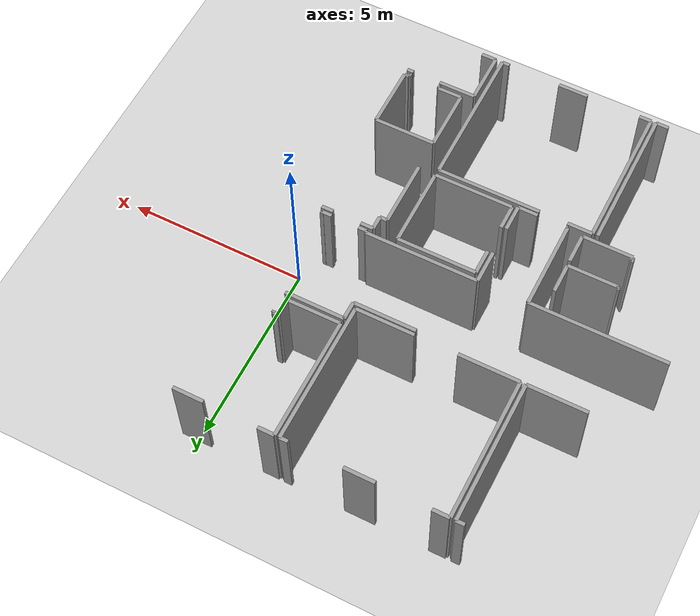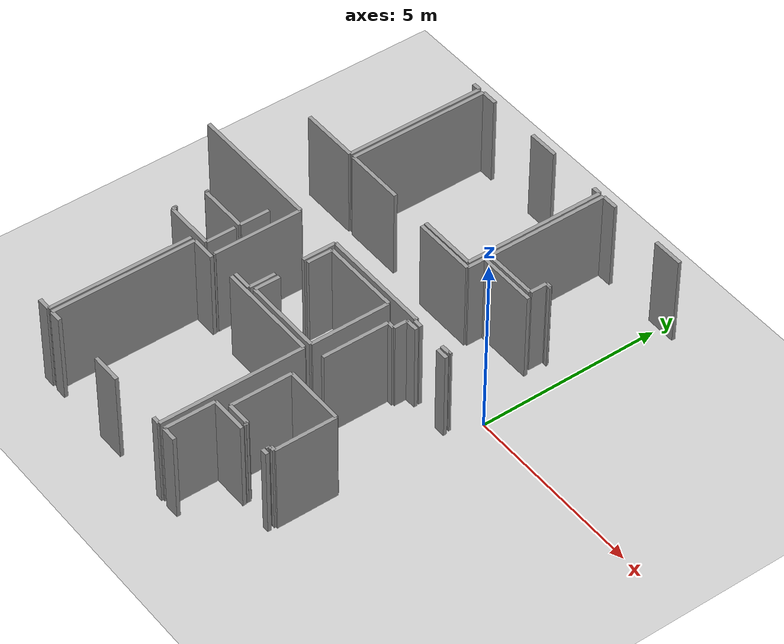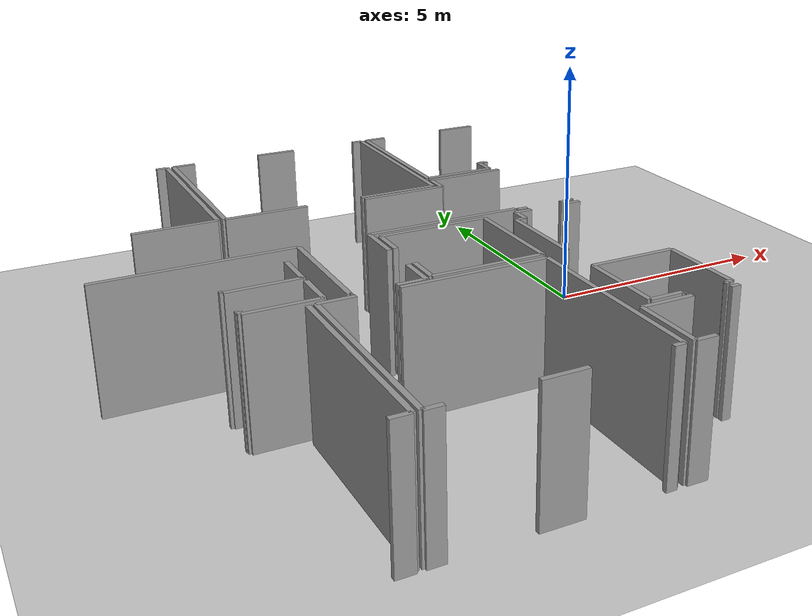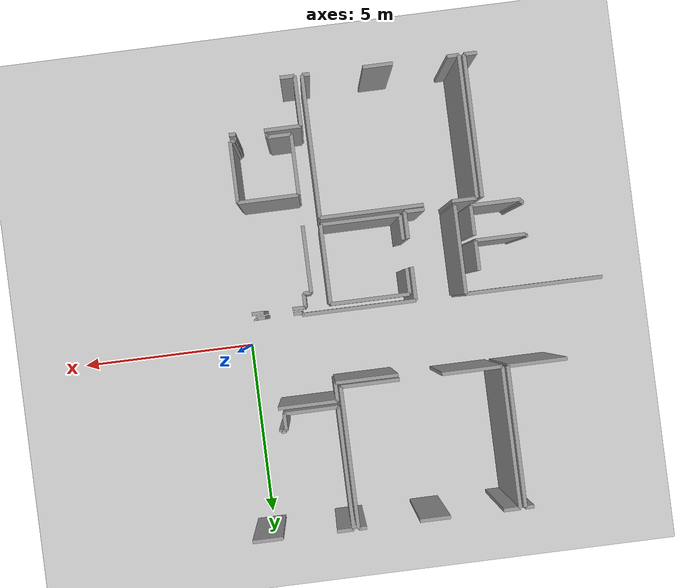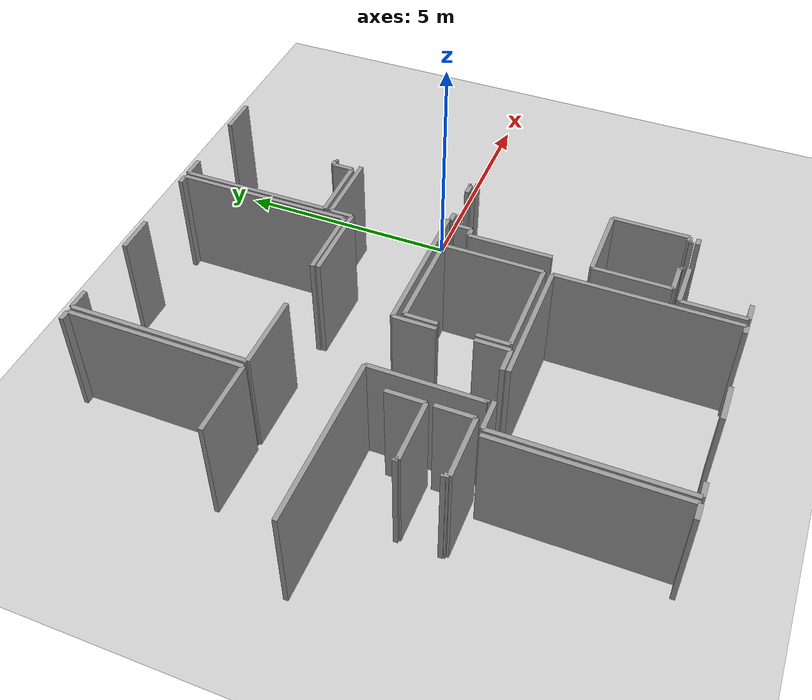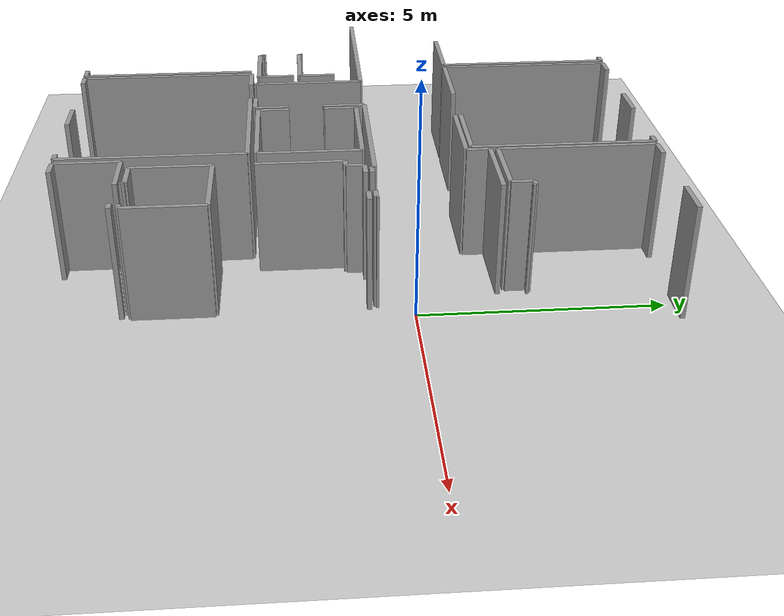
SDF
<sdf version="1.6">
 <world name="default">
  <model name="ground_plane">
   <static>1</static>
   <link name="link">
    <collision name="collision">
     <geometry><plane><normal>0 0 1</normal><size>100 100</size></plane></geometry>
     <surface><friction><ode><mu>100</mu><mu2>50</mu2></ode></friction></surface>
    </collision>
    <visual name="visual">
     <cast_shadows>0</cast_shadows>
     <geometry><plane><normal>0 0 1</normal><size>100 100</size></plane></geometry>
     <material>
      <script><uri>file://media/materials/scripts/gazebo.material</uri><name>Gazebo/Grey</name></script>
     </material>
    </visual>
   </link>
  </model>
  <model name="0510025537_Layout1_PLAN2">
   <static>1</static>
   <link name="Wall_35">
    <collision name="Wall_35_Collision">
     <geometry><box><size>3.89750270064 0.1 2.5</size></box></geometry>
     <pose>1.94875135032 0 1.25 0 0 0</pose>
    </collision>
    <visual name="Wall_35_Visual">
     <pose>1.94875135032 0 1.25 0 0 0</pose>
     <geometry><box><size>3.89750270064 0.1 2.5</size></box></geometry>
     <material>
      <script><uri>file://media/materials/scripts/gazebo.material</uri><name>Gazebo/Grey</name></script>
      <ambient>1 1 1 1</ambient>
     </material>
    </visual>
    <pose>13.3397725106 -8.47578954057 0 0 0 -1.57079632679</pose>
   </link>
   <link name="Wall_36">
    <collision name="Wall_36_Collision">
     <geometry><box><size>0.350702166868 0.1 2.5</size></box></geometry>
     <pose>0.175351083434 0 1.25 0 0 0</pose>
    </collision>
    <visual name="Wall_36_Visual">
     <pose>0.175351083434 0 1.25 0 0 0</pose>
     <geometry><box><size>0.350702166868 0.1 2.5</size></box></geometry>
     <material>
      <script><uri>file://media/materials/scripts/gazebo.material</uri><name>Gazebo/Grey</name></script>
      <ambient>1 1 1 1</ambient>
     </material>
    </visual>
    <pose>13.3397725106 -12.3732922412 0 0 0 3.14159265359</pose>
   </link>
   <link name="Wall_48">
    <collision name="Wall_48_Collision">
     <geometry><box><size>0.816483446654 0.1 2.5</size></box></geometry>
     <pose>0.408241723327 0 1.25 0 0 0</pose>
    </collision>
    <visual name="Wall_48_Visual">
     <pose>0.408241723327 0 1.25 0 0 0</pose>
     <geometry><box><size>0.816483446654 0.1 2.5</size></box></geometry>
     <material>
      <script><uri>file://media/materials/scripts/gazebo.material</uri><name>Gazebo/Grey</name></script>
      <ambient>1 1 1 1</ambient>
     </material>
    </visual>
    <pose>13.6641037046 -6.52281248014 0 0 0 -1.57079632679</pose>
   </link>
   <link name="Wall_49">
    <collision name="Wall_49_Collision">
     <geometry><box><size>1.35934422063 0.1 2.5</size></box></geometry>
     <pose>0.679672110313 0 1.25 0 0 0</pose>
    </collision>
    <visual name="Wall_49_Visual">
     <pose>0.679672110313 0 1.25 0 0 0</pose>
     <geometry><box><size>1.35934422063 0.1 2.5</size></box></geometry>
     <material>
      <script><uri>file://media/materials/scripts/gazebo.material</uri><name>Gazebo/Grey</name></script>
      <ambient>1 1 1 1</ambient>
     </material>
    </visual>
    <pose>13.6641037046 -7.3392959268 0 0 0 3.14159265359</pose>
   </link>
   <link name="Wall_50">
    <collision name="Wall_50_Collision">
     <geometry><box><size>0.0365380949355 0.1 2.5</size></box></geometry>
     <pose>0.0182690474678 0 1.25 0 0 0</pose>
    </collision>
    <visual name="Wall_50_Visual">
     <pose>0.0182690474678 0 1.25 0 0 0</pose>
     <geometry><box><size>0.0365380949355 0.1 2.5</size></box></geometry>
     <material>
      <script><uri>file://media/materials/scripts/gazebo.material</uri><name>Gazebo/Grey</name></script>
      <ambient>1 1 1 1</ambient>
     </material>
    </visual>
    <pose>12.304759484 -7.3392959268 0 0 0 1.57079632679</pose>
   </link>
   <link name="Wall_51">
    <collision name="Wall_51_Collision">
     <geometry><box><size>0.0599860202072 0.1 2.5</size></box></geometry>
     <pose>0.0299930101036 0 1.25 0 0 0</pose>
    </collision>
    <visual name="Wall_51_Visual">
     <pose>0.0299930101036 0 1.25 0 0 0</pose>
     <geometry><box><size>0.0599860202072 0.1 2.5</size></box></geometry>
     <material>
      <script><uri>file://media/materials/scripts/gazebo.material</uri><name>Gazebo/Grey</name></script>
      <ambient>1 1 1 1</ambient>
     </material>
    </visual>
    <pose>12.304759484 -7.30275783186 0 0 0 3.14159265359</pose>
   </link>
   <link name="Wall_57">
    <collision name="Wall_57_Collision">
     <geometry><box><size>0.8103196289 0.1 2.5</size></box></geometry>
     <pose>0.40515981445 0 1.25 0 0 0</pose>
    </collision>
    <visual name="Wall_57_Visual">
     <pose>0.40515981445 0 1.25 0 0 0</pose>
     <geometry><box><size>0.8103196289 0.1 2.5</size></box></geometry>
     <material>
      <script><uri>file://media/materials/scripts/gazebo.material</uri><name>Gazebo/Grey</name></script>
      <ambient>1 1 1 1</ambient>
     </material>
    </visual>
    <pose>13.6721103133 -7.48246171443 0 0 0 -1.57079632679</pose>
   </link>
   <link name="Wall_58">
    <collision name="Wall_58_Collision">
     <geometry><box><size>1.36538094936 0.1 2.5</size></box></geometry>
     <pose>0.682690474678 0 1.25 0 0 0</pose>
    </collision>
    <visual name="Wall_58_Visual">
     <pose>0.682690474678 0 1.25 0 0 0</pose>
     <geometry><box><size>1.36538094936 0.1 2.5</size></box></geometry>
     <material>
      <script><uri>file://media/materials/scripts/gazebo.material</uri><name>Gazebo/Grey</name></script>
      <ambient>1 1 1 1</ambient>
     </material>
    </visual>
    <pose>13.6721103133 -8.29278134333 0 0 0 3.14159265359</pose>
   </link>
   <link name="Wall_59">
    <collision name="Wall_59_Collision">
     <geometry><box><size>0.0972231047849 0.1 2.5</size></box></geometry>
     <pose>0.0486115523925 0 1.25 0 0 0</pose>
    </collision>
    <visual name="Wall_59_Visual">
     <pose>0.0486115523925 0 1.25 0 0 0</pose>
     <geometry><box><size>0.0972231047849 0.1 2.5</size></box></geometry>
     <material>
      <script><uri>file://media/materials/scripts/gazebo.material</uri><name>Gazebo/Grey</name></script>
      <ambient>1 1 1 1</ambient>
     </material>
    </visual>
    <pose>12.3067293639 -8.29278134333 0 0 0 1.57079632679</pose>
   </link>
   <link name="Wall_60">
    <collision name="Wall_60_Collision">
     <geometry><box><size>0.0660227489356 0.1 2.5</size></box></geometry>
     <pose>0.0330113744678 0 1.25 0 0 0</pose>
    </collision>
    <visual name="Wall_60_Visual">
     <pose>0.0330113744678 0 1.25 0 0 0</pose>
     <geometry><box><size>0.0660227489356 0.1 2.5</size></box></geometry>
     <material>
      <script><uri>file://media/materials/scripts/gazebo.material</uri><name>Gazebo/Grey</name></script>
      <ambient>1 1 1 1</ambient>
     </material>
    </visual>
    <pose>12.3067293639 -8.19555823855 0 0 0 3.14159265359</pose>
   </link>
   <link name="Wall_75">
    <collision name="Wall_75_Collision">
     <geometry><box><size>0.229395691682 0.1 2.5</size></box></geometry>
     <pose>0.114697845841 0 1.25 0 0 0</pose>
    </collision>
    <visual name="Wall_75_Visual">
     <pose>0.114697845841 0 1.25 0 0 0</pose>
     <geometry><box><size>0.229395691682 0.1 2.5</size></box></geometry>
     <material>
      <script><uri>file://media/materials/scripts/gazebo.material</uri><name>Gazebo/Grey</name></script>
      <ambient>1 1 1 1</ambient>
     </material>
    </visual>
    <pose>12.9947893499 -0.00805744423969 0 0 0 0.0</pose>
   </link>
   <link name="Wall_76">
    <collision name="Wall_76_Collision">
     <geometry><box><size>3.85548071424 0.1 2.5</size></box></geometry>
     <pose>1.92774035712 0 1.25 0 0 0</pose>
    </collision>
    <visual name="Wall_76_Visual">
     <pose>1.92774035712 0 1.25 0 0 0</pose>
     <geometry><box><size>3.85548071424 0.1 2.5</size></box></geometry>
     <material>
      <script><uri>file://media/materials/scripts/gazebo.material</uri><name>Gazebo/Grey</name></script>
      <ambient>1 1 1 1</ambient>
     </material>
    </visual>
    <pose>13.2241850416 -0.00805744423969 0 0 0 -1.57079632679</pose>
   </link>
   <link name="Wall_77">
    <collision name="Wall_77_Collision">
     <geometry><box><size>1.6211476139 0.1 2.5</size></box></geometry>
     <pose>0.810573806952 0 1.25 0 0 0</pose>
    </collision>
    <visual name="Wall_77_Visual">
     <pose>0.810573806952 0 1.25 0 0 0</pose>
     <geometry><box><size>1.6211476139 0.1 2.5</size></box></geometry>
     <material>
      <script><uri>file://media/materials/scripts/gazebo.material</uri><name>Gazebo/Grey</name></script>
      <ambient>1 1 1 1</ambient>
     </material>
    </visual>
    <pose>13.2241850416 -3.86353815848 0 0 0 3.14159265359</pose>
   </link>
   <link name="Wall_78">
    <collision name="Wall_78_Collision">
     <geometry><box><size>3.86142848065 0.1 2.5</size></box></geometry>
     <pose>1.93071424033 0 1.25 0 0 0</pose>
    </collision>
    <visual name="Wall_78_Visual">
     <pose>1.93071424033 0 1.25 0 0 0</pose>
     <geometry><box><size>3.86142848065 0.1 2.5</size></box></geometry>
     <material>
      <script><uri>file://media/materials/scripts/gazebo.material</uri><name>Gazebo/Grey</name></script>
      <ambient>1 1 1 1</ambient>
     </material>
    </visual>
    <pose>13.3675414628 -3.86760500731 0 0 0 1.57079632679</pose>
   </link>
   <link name="Wall_79">
    <collision name="Wall_79_Collision">
     <geometry><box><size>0.457711126644 0.1 2.5</size></box></geometry>
     <pose>0.228855563322 0 1.25 0 0 0</pose>
    </collision>
    <visual name="Wall_79_Visual">
     <pose>0.228855563322 0 1.25 0 0 0</pose>
     <geometry><box><size>0.457711126644 0.1 2.5</size></box></geometry>
     <material>
      <script><uri>file://media/materials/scripts/gazebo.material</uri><name>Gazebo/Grey</name></script>
      <ambient>1 1 1 1</ambient>
     </material>
    </visual>
    <pose>13.3675414628 -0.00617652665692 0 0 0 0.0</pose>
   </link>
   <link name="Wall_80">
    <collision name="Wall_80_Collision">
     <geometry><box><size>0.838596937154 0.1 2.5</size></box></geometry>
     <pose>0.419298468577 0 1.25 0 0 0</pose>
    </collision>
    <visual name="Wall_80_Visual">
     <pose>0.419298468577 0 1.25 0 0 0</pose>
     <geometry><box><size>0.838596937154 0.1 2.5</size></box></geometry>
     <material>
      <script><uri>file://media/materials/scripts/gazebo.material</uri><name>Gazebo/Grey</name></script>
      <ambient>1 1 1 1</ambient>
     </material>
    </visual>
    <pose>15.2684755671 -0.00617652665692 0 0 0 0.0</pose>
   </link>
   <link name="Wall_81">
    <collision name="Wall_81_Collision">
     <geometry><box><size>0.22761644532 0.1 2.5</size></box></geometry>
     <pose>0.11380822266 0 1.25 0 0 0</pose>
    </collision>
    <visual name="Wall_81_Visual">
     <pose>0.11380822266 0 1.25 0 0 0</pose>
     <geometry><box><size>0.22761644532 0.1 2.5</size></box></geometry>
     <material>
      <script><uri>file://media/materials/scripts/gazebo.material</uri><name>Gazebo/Grey</name></script>
      <ambient>1 1 1 1</ambient>
     </material>
    </visual>
    <pose>17.5539175192 -0.00617652665692 0 0 0 0.0</pose>
   </link>
   <link name="Wall_82">
    <collision name="Wall_82_Collision">
     <geometry><box><size>3.86238164834 0.1 2.5</size></box></geometry>
     <pose>1.93119082417 0 1.25 0 0 0</pose>
    </collision>
    <visual name="Wall_82_Visual">
     <pose>1.93119082417 0 1.25 0 0 0</pose>
     <geometry><box><size>3.86238164834 0.1 2.5</size></box></geometry>
     <material>
      <script><uri>file://media/materials/scripts/gazebo.material</uri><name>Gazebo/Grey</name></script>
      <ambient>1 1 1 1</ambient>
     </material>
    </visual>
    <pose>17.7815339645 -0.00617652665692 0 0 0 -1.57079632679</pose>
   </link>
   <link name="Wall_83">
    <collision name="Wall_83_Collision">
     <geometry><box><size>1.60773972168 0.1 2.5</size></box></geometry>
     <pose>0.803869860838 0 1.25 0 0 0</pose>
    </collision>
    <visual name="Wall_83_Visual">
     <pose>0.803869860838 0 1.25 0 0 0</pose>
     <geometry><box><size>1.60773972168 0.1 2.5</size></box></geometry>
     <material>
      <script><uri>file://media/materials/scripts/gazebo.material</uri><name>Gazebo/Grey</name></script>
      <ambient>1 1 1 1</ambient>
     </material>
    </visual>
    <pose>17.7815339645 -3.868558175 0 0 0 3.14159265359</pose>
   </link>
   <link name="Wall_84">
    <collision name="Wall_84_Collision">
     <geometry><box><size>1.64707405098 0.1 2.5</size></box></geometry>
     <pose>0.82353702549 0 1.25 0 0 0</pose>
    </collision>
    <visual name="Wall_84_Visual">
     <pose>0.82353702549 0 1.25 0 0 0</pose>
     <geometry><box><size>1.64707405098 0.1 2.5</size></box></geometry>
     <material>
      <script><uri>file://media/materials/scripts/gazebo.material</uri><name>Gazebo/Grey</name></script>
      <ambient>1 1 1 1</ambient>
     </material>
    </visual>
    <pose>15.014615238 -3.868558175 0 0 0 3.14101394995</pose>
   </link>
   <link name="Wall_85">
    <collision name="Wall_85_Collision">
     <geometry><box><size>3.89864650187 0.1 2.5</size></box></geometry>
     <pose>1.94932325094 0 1.25 0 0 0</pose>
    </collision>
    <visual name="Wall_85_Visual">
     <pose>1.94932325094 0 1.25 0 0 0</pose>
     <geometry><box><size>3.89864650187 0.1 2.5</size></box></geometry>
     <material>
      <script><uri>file://media/materials/scripts/gazebo.material</uri><name>Gazebo/Grey</name></script>
      <ambient>1 1 1 1</ambient>
     </material>
    </visual>
    <pose>13.4788079049 -12.372021351 0 0 0 1.57079632679</pose>
   </link>
   <link name="Wall_86">
    <collision name="Wall_86_Collision">
     <geometry><box><size>0.683230603037 0.1 2.5</size></box></geometry>
     <pose>0.341615301519 0 1.25 0 0 0</pose>
    </collision>
    <visual name="Wall_86_Visual">
     <pose>0.341615301519 0 1.25 0 0 0</pose>
     <geometry><box><size>0.683230603037 0.1 2.5</size></box></geometry>
     <material>
      <script><uri>file://media/materials/scripts/gazebo.material</uri><name>Gazebo/Grey</name></script>
      <ambient>1 1 1 1</ambient>
     </material>
    </visual>
    <pose>13.4788079049 -8.47337484908 0 0 0 0.0</pose>
   </link>
   <link name="Wall_87">
    <collision name="Wall_87_Collision">
     <geometry><box><size>2.82385461015 0.1 2.5</size></box></geometry>
     <pose>1.41192730508 0 1.25 0 0 0</pose>
    </collision>
    <visual name="Wall_87_Visual">
     <pose>1.41192730508 0 1.25 0 0 0</pose>
     <geometry><box><size>2.82385461015 0.1 2.5</size></box></geometry>
     <material>
      <script><uri>file://media/materials/scripts/gazebo.material</uri><name>Gazebo/Grey</name></script>
      <ambient>1 1 1 1</ambient>
     </material>
    </visual>
    <pose>14.9360106755 -8.47337484908 0 0 0 0.0</pose>
   </link>
   <link name="Wall_88">
    <collision name="Wall_88_Collision">
     <geometry><box><size>3.89654953295 0.1 2.5</size></box></geometry>
     <pose>1.94827476647 0 1.25 0 0 0</pose>
    </collision>
    <visual name="Wall_88_Visual">
     <pose>1.94827476647 0 1.25 0 0 0</pose>
     <geometry><box><size>3.89654953295 0.1 2.5</size></box></geometry>
     <material>
      <script><uri>file://media/materials/scripts/gazebo.material</uri><name>Gazebo/Grey</name></script>
      <ambient>1 1 1 1</ambient>
     </material>
    </visual>
    <pose>17.7598652856 -8.47337484908 0 0 0 -1.57079632679</pose>
   </link>
   <link name="Wall_89">
    <collision name="Wall_89_Collision">
     <geometry><box><size>0.20594776641 0.1 2.5</size></box></geometry>
     <pose>0.102973883205 0 1.25 0 0 0</pose>
    </collision>
    <visual name="Wall_89_Visual">
     <pose>0.102973883205 0 1.25 0 0 0</pose>
     <geometry><box><size>0.20594776641 0.1 2.5</size></box></geometry>
     <material>
      <script><uri>file://media/materials/scripts/gazebo.material</uri><name>Gazebo/Grey</name></script>
      <ambient>1 1 1 1</ambient>
     </material>
    </visual>
    <pose>17.7598652856 -12.369924382 0 0 0 3.14159265359</pose>
   </link>
   <link name="Wall_90">
    <collision name="Wall_90_Collision">
     <geometry><box><size>0.817627247887 0.1 2.5</size></box></geometry>
     <pose>0.408813623944 0 1.25 0 0 0</pose>
    </collision>
    <visual name="Wall_90_Visual">
     <pose>0.408813623944 0 1.25 0 0 0</pose>
     <geometry><box><size>0.817627247887 0.1 2.5</size></box></geometry>
     <material>
      <script><uri>file://media/materials/scripts/gazebo.material</uri><name>Gazebo/Grey</name></script>
      <ambient>1 1 1 1</ambient>
     </material>
    </visual>
    <pose>16.1016712207 -12.369924382 0 0 0 3.14159265359</pose>
   </link>
   <link name="Wall_91">
    <collision name="Wall_91_Collision">
     <geometry><box><size>0.324528602482 0.1 2.5</size></box></geometry>
     <pose>0.162264301241 0 1.25 0 0 0</pose>
    </collision>
    <visual name="Wall_91_Visual">
     <pose>0.162264301241 0 1.25 0 0 0</pose>
     <geometry><box><size>0.324528602482 0.1 2.5</size></box></geometry>
     <material>
      <script><uri>file://media/materials/scripts/gazebo.material</uri><name>Gazebo/Grey</name></script>
      <ambient>1 1 1 1</ambient>
     </material>
    </visual>
    <pose>13.8033297325 -12.369924382 0 0 0 -3.13513102431</pose>
   </link>
   <link name="Wall_92">
    <collision name="Wall_92_Collision">
     <geometry><box><size>2.16159369638 0.1 2.5</size></box></geometry>
     <pose>1.08079684819 0 1.25 0 0 0</pose>
    </collision>
    <visual name="Wall_92_Visual">
     <pose>1.08079684819 0 1.25 0 0 0</pose>
     <geometry><box><size>2.16159369638 0.1 2.5</size></box></geometry>
     <material>
      <script><uri>file://media/materials/scripts/gazebo.material</uri><name>Gazebo/Grey</name></script>
      <ambient>1 1 1 1</ambient>
     </material>
    </visual>
    <pose>15.6072949101 -6.12515091822 0 0 0 0.0</pose>
   </link>
   <link name="Wall_93">
    <collision name="Wall_93_Collision">
     <geometry><box><size>2.16426256593 0.1 2.5</size></box></geometry>
     <pose>1.08213128296 0 1.25 0 0 0</pose>
    </collision>
    <visual name="Wall_93_Visual">
     <pose>1.08213128296 0 1.25 0 0 0</pose>
     <geometry><box><size>2.16426256593 0.1 2.5</size></box></geometry>
     <material>
      <script><uri>file://media/materials/scripts/gazebo.material</uri><name>Gazebo/Grey</name></script>
      <ambient>1 1 1 1</ambient>
     </material>
    </visual>
    <pose>17.7688886065 -6.12515091822 0 0 0 -1.57079632679</pose>
   </link>
   <link name="Wall_94">
    <collision name="Wall_94_Collision">
     <geometry><box><size>2.16527927813 0.1 2.5</size></box></geometry>
     <pose>1.08263963907 0 1.25 0 0 0</pose>
    </collision>
    <visual name="Wall_94_Visual">
     <pose>1.08263963907 0 1.25 0 0 0</pose>
     <geometry><box><size>2.16527927813 0.1 2.5</size></box></geometry>
     <material>
      <script><uri>file://media/materials/scripts/gazebo.material</uri><name>Gazebo/Grey</name></script>
      <ambient>1 1 1 1</ambient>
     </material>
    </visual>
    <pose>17.7688886065 -8.28941348415 0 0 0 3.14159265359</pose>
   </link>
   <link name="Wall_95">
    <collision name="Wall_95_Collision">
     <geometry><box><size>0.684565037809 0.1 2.5</size></box></geometry>
     <pose>0.342282518904 0 1.25 0 0 0</pose>
    </collision>
    <visual name="Wall_95_Visual">
     <pose>0.342282518904 0 1.25 0 0 0</pose>
     <geometry><box><size>0.684565037809 0.1 2.5</size></box></geometry>
     <material>
      <script><uri>file://media/materials/scripts/gazebo.material</uri><name>Gazebo/Grey</name></script>
      <ambient>1 1 1 1</ambient>
     </material>
    </visual>
    <pose>15.6036093283 -8.28941348415 0 0 0 1.57079632679</pose>
   </link>
   <link name="Wall_96">
    <collision name="Wall_96_Collision">
     <geometry><box><size>0.697855573403 0.1 2.5</size></box></geometry>
     <pose>0.348927786702 0 1.25 0 0 0</pose>
    </collision>
    <visual name="Wall_96_Visual">
     <pose>0.348927786702 0 1.25 0 0 0</pose>
     <geometry><box><size>0.697855573403 0.1 2.5</size></box></geometry>
     <material>
      <script><uri>file://media/materials/scripts/gazebo.material</uri><name>Gazebo/Grey</name></script>
      <ambient>1 1 1 1</ambient>
     </material>
    </visual>
    <pose>15.6036093283 -6.82299675923 0 0 0 1.56551500638</pose>
   </link>
   <link name="Wall_97">
    <collision name="Wall_97_Collision">
     <geometry><box><size>1.82169409671 0.1 2.5</size></box></geometry>
     <pose>0.910847048357 0 1.25 0 0 0</pose>
    </collision>
    <visual name="Wall_97_Visual">
     <pose>0.910847048357 0 1.25 0 0 0</pose>
     <geometry><box><size>1.82169409671 0.1 2.5</size></box></geometry>
     <material>
      <script><uri>file://media/materials/scripts/gazebo.material</uri><name>Gazebo/Grey</name></script>
      <ambient>1 1 1 1</ambient>
     </material>
    </visual>
    <pose>18.2533519731 -8.32283789795 0 0 0 1.57079632679</pose>
   </link>
   <link name="Wall_98">
    <collision name="Wall_98_Collision">
     <geometry><box><size>0.203723708458 0.1 2.5</size></box></geometry>
     <pose>0.101861854229 0 1.25 0 0 0</pose>
    </collision>
    <visual name="Wall_98_Visual">
     <pose>0.101861854229 0 1.25 0 0 0</pose>
     <geometry><box><size>0.203723708458 0.1 2.5</size></box></geometry>
     <material>
      <script><uri>file://media/materials/scripts/gazebo.material</uri><name>Gazebo/Grey</name></script>
      <ambient>1 1 1 1</ambient>
     </material>
    </visual>
    <pose>18.2533519731 -6.50114380123 0 0 0 0.0</pose>
   </link>
   <link name="Wall_99">
    <collision name="Wall_99_Collision">
     <geometry><box><size>0.379297197687 0.1 2.5</size></box></geometry>
     <pose>0.189648598843 0 1.25 0 0 0</pose>
    </collision>
    <visual name="Wall_99_Visual">
     <pose>0.189648598843 0 1.25 0 0 0</pose>
     <geometry><box><size>0.379297197687 0.1 2.5</size></box></geometry>
     <material>
      <script><uri>file://media/materials/scripts/gazebo.material</uri><name>Gazebo/Grey</name></script>
      <ambient>1 1 1 1</ambient>
     </material>
    </visual>
    <pose>18.4570756815 -6.50114380123 0 0 0 1.57079632679</pose>
   </link>
   <link name="Wall_100">
    <collision name="Wall_100_Collision">
     <geometry><box><size>0.348668742454 0.1 2.5</size></box></geometry>
     <pose>0.174334371227 0 1.25 0 0 0</pose>
    </collision>
    <visual name="Wall_100_Visual">
     <pose>0.174334371227 0 1.25 0 0 0</pose>
     <geometry><box><size>0.348668742454 0.1 2.5</size></box></geometry>
     <material>
      <script><uri>file://media/materials/scripts/gazebo.material</uri><name>Gazebo/Grey</name></script>
      <ambient>1 1 1 1</ambient>
     </material>
    </visual>
    <pose>18.4570756815 -6.12184660355 0 0 0 0.0</pose>
   </link>
   <link name="Wall_101">
    <collision name="Wall_101_Collision">
     <geometry><box><size>0.326936519032 0.1 2.5</size></box></geometry>
     <pose>0.163468259516 0 1.25 0 0 0</pose>
    </collision>
    <visual name="Wall_101_Visual">
     <pose>0.163468259516 0 1.25 0 0 0</pose>
     <geometry><box><size>0.326936519032 0.1 2.5</size></box></geometry>
     <material>
      <script><uri>file://media/materials/scripts/gazebo.material</uri><name>Gazebo/Grey</name></script>
      <ambient>1 1 1 1</ambient>
     </material>
    </visual>
    <pose>19.5889305458 -6.12184660355 0 0 0 0.0</pose>
   </link>
   <link name="Wall_104">
    <collision name="Wall_104_Collision">
     <geometry><box><size>1.66156192413 0.1 2.5</size></box></geometry>
     <pose>0.830780962064 0 1.25 0 0 0</pose>
    </collision>
    <visual name="Wall_104_Visual">
     <pose>0.830780962064 0 1.25 0 0 0</pose>
     <geometry><box><size>1.66156192413 0.1 2.5</size></box></geometry>
     <material>
      <script><uri>file://media/materials/scripts/gazebo.material</uri><name>Gazebo/Grey</name></script>
      <ambient>1 1 1 1</ambient>
     </material>
    </visual>
    <pose>18.2541780517 -10.8216623245 0 0 0 1.57079632679</pose>
   </link>
   <link name="Wall_105">
    <collision name="Wall_105_Collision">
     <geometry><box><size>1.66054521192 0.1 2.5</size></box></geometry>
     <pose>0.83027260596 0 1.25 0 0 0</pose>
    </collision>
    <visual name="Wall_105_Visual">
     <pose>0.83027260596 0 1.25 0 0 0</pose>
     <geometry><box><size>1.66054521192 0.1 2.5</size></box></geometry>
     <material>
      <script><uri>file://media/materials/scripts/gazebo.material</uri><name>Gazebo/Grey</name></script>
      <ambient>1 1 1 1</ambient>
     </material>
    </visual>
    <pose>18.2541780517 -9.16010040033 0 0 0 0.0</pose>
   </link>
   <link name="Wall_106">
    <collision name="Wall_106_Collision">
     <geometry><box><size>1.66327762598 0.1 2.5</size></box></geometry>
     <pose>0.831638812988 0 1.25 0 0 0</pose>
    </collision>
    <visual name="Wall_106_Visual">
     <pose>0.831638812988 0 1.25 0 0 0</pose>
     <geometry><box><size>1.66327762598 0.1 2.5</size></box></geometry>
     <material>
      <script><uri>file://media/materials/scripts/gazebo.material</uri><name>Gazebo/Grey</name></script>
      <ambient>1 1 1 1</ambient>
     </material>
    </visual>
    <pose>19.9147232636 -9.16010040033 0 0 0 -1.57079632679</pose>
   </link>
   <link name="Wall_107">
    <collision name="Wall_107_Collision">
     <geometry><box><size>0.129821439919 0.1 2.5</size></box></geometry>
     <pose>0.0649107199593 0 1.25 0 0 0</pose>
    </collision>
    <visual name="Wall_107_Visual">
     <pose>0.0649107199593 0 1.25 0 0 0</pose>
     <geometry><box><size>0.129821439919 0.1 2.5</size></box></geometry>
     <material>
      <script><uri>file://media/materials/scripts/gazebo.material</uri><name>Gazebo/Grey</name></script>
      <ambient>1 1 1 1</ambient>
     </material>
    </visual>
    <pose>19.9147232636 -10.8233780263 0 0 0 3.14159265359</pose>
   </link>
   <link name="Wall_108">
    <collision name="Wall_108_Collision">
     <geometry><box><size>0.0581432293321 0.1 2.5</size></box></geometry>
     <pose>0.0290716146661 0 1.25 0 0 0</pose>
    </collision>
    <visual name="Wall_108_Visual">
     <pose>0.0290716146661 0 1.25 0 0 0</pose>
     <geometry><box><size>0.0581432293321 0.1 2.5</size></box></geometry>
     <material>
      <script><uri>file://media/materials/scripts/gazebo.material</uri><name>Gazebo/Grey</name></script>
      <ambient>1 1 1 1</ambient>
     </material>
    </visual>
    <pose>19.7849018237 -10.8233780263 0 0 0 -1.57079632679</pose>
   </link>
   <link name="Wall_109">
    <collision name="Wall_109_Collision">
     <geometry><box><size>0.051788778039 0.1 2.5</size></box></geometry>
     <pose>0.0258943890195 0 1.25 0 0 0</pose>
    </collision>
    <visual name="Wall_109_Visual">
     <pose>0.0258943890195 0 1.25 0 0 0</pose>
     <geometry><box><size>0.051788778039 0.1 2.5</size></box></geometry>
     <material>
      <script><uri>file://media/materials/scripts/gazebo.material</uri><name>Gazebo/Grey</name></script>
      <ambient>1 1 1 1</ambient>
     </material>
    </visual>
    <pose>19.7849018237 -10.8815212556 0 0 0 3.14159265359</pose>
   </link>
   <link name="Wall_110">
    <collision name="Wall_110_Collision">
     <geometry><box><size>0.0477854737243 0.1 2.5</size></box></geometry>
     <pose>0.0238927368622 0 1.25 0 0 0</pose>
    </collision>
    <visual name="Wall_110_Visual">
     <pose>0.0238927368622 0 1.25 0 0 0</pose>
     <geometry><box><size>0.0477854737243 0.1 2.5</size></box></geometry>
     <material>
      <script><uri>file://media/materials/scripts/gazebo.material</uri><name>Gazebo/Grey</name></script>
      <ambient>1 1 1 1</ambient>
     </material>
    </visual>
    <pose>18.9508800915 -10.8815212556 0 0 0 3.14159265359</pose>
   </link>
   <link name="Wall_111">
    <collision name="Wall_111_Collision">
     <geometry><box><size>0.062019444621 0.1 2.5</size></box></geometry>
     <pose>0.0310097223105 0 1.25 0 0 0</pose>
    </collision>
    <visual name="Wall_111_Visual">
     <pose>0.0310097223105 0 1.25 0 0 0</pose>
     <geometry><box><size>0.062019444621 0.1 2.5</size></box></geometry>
     <material>
      <script><uri>file://media/materials/scripts/gazebo.material</uri><name>Gazebo/Grey</name></script>
      <ambient>1 1 1 1</ambient>
     </material>
    </visual>
    <pose>18.9030946178 -10.8815212556 0 0 0 1.57079632679</pose>
   </link>
   <link name="Wall_112">
    <collision name="Wall_112_Collision">
     <geometry><box><size>0.648920162669 0.1 2.5</size></box></geometry>
     <pose>0.324460081334 0 1.25 0 0 0</pose>
    </collision>
    <visual name="Wall_112_Visual">
     <pose>0.324460081334 0 1.25 0 0 0</pose>
     <geometry><box><size>0.648920162669 0.1 2.5</size></box></geometry>
     <material>
      <script><uri>file://media/materials/scripts/gazebo.material</uri><name>Gazebo/Grey</name></script>
      <ambient>1 1 1 1</ambient>
     </material>
    </visual>
    <pose>18.9030946178 -10.819501811 0 0 0 -3.13826324952</pose>
   </link>
   <link name="Wall_113">
    <collision name="Wall_113_Collision">
     <geometry><box><size>1.36385588104 0.1 2.5</size></box></geometry>
     <pose>0.681927940522 0 1.25 0 0 0</pose>
    </collision>
    <visual name="Wall_113_Visual">
     <pose>0.681927940522 0 1.25 0 0 0</pose>
     <geometry><box><size>1.36385588104 0.1 2.5</size></box></geometry>
     <material>
      <script><uri>file://media/materials/scripts/gazebo.material</uri><name>Gazebo/Grey</name></script>
      <ambient>1 1 1 1</ambient>
     </material>
    </visual>
    <pose>17.9581877105 -12.3705598272 0 0 0 1.57079632679</pose>
   </link>
   <link name="Wall_114">
    <collision name="Wall_114_Collision">
     <geometry><box><size>1.0054012836 0.1 2.5</size></box></geometry>
     <pose>0.5027006418 0 1.25 0 0 0</pose>
    </collision>
    <visual name="Wall_114_Visual">
     <pose>0.5027006418 0 1.25 0 0 0</pose>
     <geometry><box><size>1.0054012836 0.1 2.5</size></box></geometry>
     <material>
      <script><uri>file://media/materials/scripts/gazebo.material</uri><name>Gazebo/Grey</name></script>
      <ambient>1 1 1 1</ambient>
     </material>
    </visual>
    <pose>17.9581877105 -11.0067039461 0 0 0 0.0</pose>
   </link>
   <link name="Wall_115">
    <collision name="Wall_115_Collision">
     <geometry><box><size>0.181673762471 0.1 2.5</size></box></geometry>
     <pose>0.0908368812353 0 1.25 0 0 0</pose>
    </collision>
    <visual name="Wall_115_Visual">
     <pose>0.0908368812353 0 1.25 0 0 0</pose>
     <geometry><box><size>0.181673762471 0.1 2.5</size></box></geometry>
     <material>
      <script><uri>file://media/materials/scripts/gazebo.material</uri><name>Gazebo/Grey</name></script>
      <ambient>1 1 1 1</ambient>
     </material>
    </visual>
    <pose>19.7401664866 -11.0067039461 0 0 0 0.0</pose>
   </link>
   <link name="Wall_123">
    <collision name="Wall_123_Collision">
     <geometry><box><size>0.402491792634 0.1 2.5</size></box></geometry>
     <pose>0.201245896317 0 1.25 0 0 0</pose>
    </collision>
    <visual name="Wall_123_Visual">
     <pose>0.201245896317 0 1.25 0 0 0</pose>
     <geometry><box><size>0.402491792634 0.1 2.5</size></box></geometry>
     <material>
      <script><uri>file://media/materials/scripts/gazebo.material</uri><name>Gazebo/Grey</name></script>
      <ambient>1 1 1 1</ambient>
     </material>
    </visual>
    <pose>18.3606786554 -12.3713859058 0 0 0 3.13954024094</pose>
   </link>
   <link name="Wall_233">
    <collision name="Wall_233_Collision">
     <geometry><box><size>3.33567388956 0.1 2.5</size></box></geometry>
     <pose>1.66783694478 0 1.25 0 0 0</pose>
    </collision>
    <visual name="Wall_233_Visual">
     <pose>1.66783694478 0 1.25 0 0 0</pose>
     <geometry><box><size>3.33567388956 0.1 2.5</size></box></geometry>
     <material>
      <script><uri>file://media/materials/scripts/gazebo.material</uri><name>Gazebo/Grey</name></script>
      <ambient>1 1 1 1</ambient>
     </material>
    </visual>
    <pose>17.9144690856 -3.34082099511 0 0 0 1.57079632679</pose>
   </link>
   <link name="Wall_234">
    <collision name="Wall_234_Collision">
     <geometry><box><size>0.450594141196 0.1 2.5</size></box></geometry>
     <pose>0.225297070598 0 1.25 0 0 0</pose>
    </collision>
    <visual name="Wall_234_Visual">
     <pose>0.225297070598 0 1.25 0 0 0</pose>
     <geometry><box><size>0.450594141196 0.1 2.5</size></box></geometry>
     <material>
      <script><uri>file://media/materials/scripts/gazebo.material</uri><name>Gazebo/Grey</name></script>
      <ambient>1 1 1 1</ambient>
     </material>
    </visual>
    <pose>17.9144690856 -0.00514710554744 0 0 0 0.0</pose>
   </link>
   <link name="Wall_235">
    <collision name="Wall_235_Collision">
     <geometry><box><size>0.83719895787 0.1 2.5</size></box></geometry>
     <pose>0.418599478935 0 1.25 0 0 0</pose>
    </collision>
    <visual name="Wall_235_Visual">
     <pose>0.418599478935 0 1.25 0 0 0</pose>
     <geometry><box><size>0.83719895787 0.1 2.5</size></box></geometry>
     <material>
      <script><uri>file://media/materials/scripts/gazebo.material</uri><name>Gazebo/Grey</name></script>
      <ambient>1 1 1 1</ambient>
     </material>
    </visual>
    <pose>19.8316070407 -0.00514710554744 0 0 0 0.0</pose>
   </link>
   <link name="Wall_238">
    <collision name="Wall_238_Collision">
     <geometry><box><size>0.0547753701468 0.1 2.5</size></box></geometry>
     <pose>0.0273876850734 0 1.25 0 0 0</pose>
    </collision>
    <visual name="Wall_238_Visual">
     <pose>0.0273876850734 0 1.25 0 0 0</pose>
     <geometry><box><size>0.0547753701468 0.1 2.5</size></box></geometry>
     <material>
      <script><uri>file://media/materials/scripts/gazebo.material</uri><name>Gazebo/Grey</name></script>
      <ambient>1 1 1 1</ambient>
     </material>
    </visual>
    <pose>19.5288809811 -2.92403888924 0 0 0 1.57079632679</pose>
   </link>
   <link name="Wall_239">
    <collision name="Wall_239_Collision">
     <geometry><box><size>0.141386541272 0.1 2.5</size></box></geometry>
     <pose>0.0706932706361 0 1.25 0 0 0</pose>
    </collision>
    <visual name="Wall_239_Visual">
     <pose>0.0706932706361 0 1.25 0 0 0</pose>
     <geometry><box><size>0.141386541272 0.1 2.5</size></box></geometry>
     <material>
      <script><uri>file://media/materials/scripts/gazebo.material</uri><name>Gazebo/Grey</name></script>
      <ambient>1 1 1 1</ambient>
     </material>
    </visual>
    <pose>19.5288809811 -2.8692635191 0 0 0 3.14159265359</pose>
   </link>
   <link name="Wall_240">
    <collision name="Wall_240_Collision">
     <geometry><box><size>0.466505687234 0.1 2.5</size></box></geometry>
     <pose>0.233252843617 0 1.25 0 0 0</pose>
    </collision>
    <visual name="Wall_240_Visual">
     <pose>0.233252843617 0 1.25 0 0 0</pose>
     <geometry><box><size>0.466505687234 0.1 2.5</size></box></geometry>
     <material>
      <script><uri>file://media/materials/scripts/gazebo.material</uri><name>Gazebo/Grey</name></script>
      <ambient>1 1 1 1</ambient>
     </material>
    </visual>
    <pose>19.3874944399 -2.8692635191 0 0 0 -1.57079632679</pose>
   </link>
   <link name="Wall_241">
    <collision name="Wall_241_Collision">
     <geometry><box><size>1.47303401687 0.1 2.5</size></box></geometry>
     <pose>0.736517008436 0 1.25 0 0 0</pose>
    </collision>
    <visual name="Wall_241_Visual">
     <pose>0.736517008436 0 1.25 0 0 0</pose>
     <geometry><box><size>1.47303401687 0.1 2.5</size></box></geometry>
     <material>
      <script><uri>file://media/materials/scripts/gazebo.material</uri><name>Gazebo/Grey</name></script>
      <ambient>1 1 1 1</ambient>
     </material>
    </visual>
    <pose>19.3874944399 -3.33576920633 0 0 0 -3.13816313423</pose>
   </link>
   <link name="Wall_245">
    <collision name="Wall_245_Collision">
     <geometry><box><size>1.71703628392 0.1 2.5</size></box></geometry>
     <pose>0.858518141958 0 1.25 0 0 0</pose>
    </collision>
    <visual name="Wall_245_Visual">
     <pose>0.858518141958 0 1.25 0 0 0</pose>
     <geometry><box><size>1.71703628392 0.1 2.5</size></box></geometry>
     <material>
      <script><uri>file://media/materials/scripts/gazebo.material</uri><name>Gazebo/Grey</name></script>
      <ambient>1 1 1 1</ambient>
     </material>
    </visual>
    <pose>16.1933659528 -3.99272415327 0 0 0 0.0</pose>
   </link>
   <link name="Wall_246">
    <collision name="Wall_246_Collision">
     <geometry><box><size>0.494503399631 0.1 2.5</size></box></geometry>
     <pose>0.247251699816 0 1.25 0 0 0</pose>
    </collision>
    <visual name="Wall_246_Visual">
     <pose>0.247251699816 0 1.25 0 0 0</pose>
     <geometry><box><size>0.494503399631 0.1 2.5</size></box></geometry>
     <material>
      <script><uri>file://media/materials/scripts/gazebo.material</uri><name>Gazebo/Grey</name></script>
      <ambient>1 1 1 1</ambient>
     </material>
    </visual>
    <pose>17.9104022368 -3.99272415327 0 0 0 1.57079632679</pose>
   </link>
   <link name="Wall_247">
    <collision name="Wall_247_Collision">
     <geometry><box><size>1.62356230539 0.1 2.5</size></box></geometry>
     <pose>0.811781152697 0 1.25 0 0 0</pose>
    </collision>
    <visual name="Wall_247_Visual">
     <pose>0.811781152697 0 1.25 0 0 0</pose>
     <geometry><box><size>1.62356230539 0.1 2.5</size></box></geometry>
     <material>
      <script><uri>file://media/materials/scripts/gazebo.material</uri><name>Gazebo/Grey</name></script>
      <ambient>1 1 1 1</ambient>
     </material>
    </visual>
    <pose>17.9104022368 -3.49822075364 0 0 0 0.0</pose>
   </link>
   <link name="Wall_261">
    <collision name="Wall_261_Collision">
     <geometry><box><size>0.0540128359916 0.1 2.5</size></box></geometry>
     <pose>0.0270064179958 0 1.25 0 0 0</pose>
    </collision>
    <visual name="Wall_261_Visual">
     <pose>0.0270064179958 0 1.25 0 0 0</pose>
     <geometry><box><size>0.0540128359916 0.1 2.5</size></box></geometry>
     <material>
      <script><uri>file://media/materials/scripts/gazebo.material</uri><name>Gazebo/Grey</name></script>
      <ambient>1 1 1 1</ambient>
     </material>
    </visual>
    <pose>19.8253796785 -5.93369130076 0 0 0 -1.57079632679</pose>
   </link>
   <link name="Wall_262">
    <collision name="Wall_262_Collision">
     <geometry><box><size>0.263773273178 0.1 2.5</size></box></geometry>
     <pose>0.131886636589 0 1.25 0 0 0</pose>
    </collision>
    <visual name="Wall_262_Visual">
     <pose>0.131886636589 0 1.25 0 0 0</pose>
     <geometry><box><size>0.263773273178 0.1 2.5</size></box></geometry>
     <material>
      <script><uri>file://media/materials/scripts/gazebo.material</uri><name>Gazebo/Grey</name></script>
      <ambient>1 1 1 1</ambient>
     </material>
    </visual>
    <pose>19.8253796785 -5.98770413675 0 0 0 3.14159265359</pose>
   </link>
   <link name="Wall_263">
    <collision name="Wall_263_Collision">
     <geometry><box><size>0.233780263074 0.1 2.5</size></box></geometry>
     <pose>0.116890131537 0 1.25 0 0 0</pose>
    </collision>
    <visual name="Wall_263_Visual">
     <pose>0.116890131537 0 1.25 0 0 0</pose>
     <geometry><box><size>0.233780263074 0.1 2.5</size></box></geometry>
     <material>
      <script><uri>file://media/materials/scripts/gazebo.material</uri><name>Gazebo/Grey</name></script>
      <ambient>1 1 1 1</ambient>
     </material>
    </visual>
    <pose>18.7966575586 -5.98770413675 0 0 0 3.14159265359</pose>
   </link>
   <link name="Wall_264">
    <collision name="Wall_264_Collision">
     <geometry><box><size>0.0556014488149 0.1 2.5</size></box></geometry>
     <pose>0.0278007244074 0 1.25 0 0 0</pose>
    </collision>
    <visual name="Wall_264_Visual">
     <pose>0.0278007244074 0 1.25 0 0 0</pose>
     <geometry><box><size>0.0556014488149 0.1 2.5</size></box></geometry>
     <material>
      <script><uri>file://media/materials/scripts/gazebo.material</uri><name>Gazebo/Grey</name></script>
      <ambient>1 1 1 1</ambient>
     </material>
    </visual>
    <pose>18.5628772955 -5.98770413675 0 0 0 1.57079632679</pose>
   </link>
   <link name="Wall_265">
    <collision name="Wall_265_Collision">
     <geometry><box><size>3.09614284807 0.1 2.5</size></box></geometry>
     <pose>1.54807142403 0 1.25 0 0 0</pose>
    </collision>
    <visual name="Wall_265_Visual">
     <pose>1.54807142403 0 1.25 0 0 0</pose>
     <geometry><box><size>3.09614284807 0.1 2.5</size></box></geometry>
     <material>
      <script><uri>file://media/materials/scripts/gazebo.material</uri><name>Gazebo/Grey</name></script>
      <ambient>1 1 1 1</ambient>
     </material>
    </visual>
    <pose>18.5628772955 -5.93210268793 0 0 0 3.14159265359</pose>
   </link>
   <link name="Wall_266">
    <collision name="Wall_266_Collision">
     <geometry><box><size>0.916184787444 0.1 2.5</size></box></geometry>
     <pose>0.458092393722 0 1.25 0 0 0</pose>
    </collision>
    <visual name="Wall_266_Visual">
     <pose>0.458092393722 0 1.25 0 0 0</pose>
     <geometry><box><size>0.916184787444 0.1 2.5</size></box></geometry>
     <material>
      <script><uri>file://media/materials/scripts/gazebo.material</uri><name>Gazebo/Grey</name></script>
      <ambient>1 1 1 1</ambient>
     </material>
    </visual>
    <pose>15.4667344475 -5.93210268793 0 0 0 -1.57079632679</pose>
   </link>
   <link name="Wall_267">
    <collision name="Wall_267_Collision">
     <geometry><box><size>0.733494312766 0.1 2.5</size></box></geometry>
     <pose>0.366747156383 0 1.25 0 0 0</pose>
    </collision>
    <visual name="Wall_267_Visual">
     <pose>0.366747156383 0 1.25 0 0 0</pose>
     <geometry><box><size>0.733494312766 0.1 2.5</size></box></geometry>
     <material>
      <script><uri>file://media/materials/scripts/gazebo.material</uri><name>Gazebo/Grey</name></script>
      <ambient>1 1 1 1</ambient>
     </material>
    </visual>
    <pose>15.4667344475 -7.62048039652 0 0 0 -1.57079632679</pose>
   </link>
   <link name="Wall_268">
    <collision name="Wall_268_Collision">
     <geometry><box><size>0.540318993455 0.1 2.5</size></box></geometry>
     <pose>0.270159496727 0 1.25 0 0 0</pose>
    </collision>
    <visual name="Wall_268_Visual">
     <pose>0.270159496727 0 1.25 0 0 0</pose>
     <geometry><box><size>0.540318993455 0.1 2.5</size></box></geometry>
     <material>
      <script><uri>file://media/materials/scripts/gazebo.material</uri><name>Gazebo/Grey</name></script>
      <ambient>1 1 1 1</ambient>
     </material>
    </visual>
    <pose>15.4667344475 -8.35397470928 0 0 0 3.14159265359</pose>
   </link>
   <link name="Wall_269">
    <collision name="Wall_269_Collision">
     <geometry><box><size>0.045370782233 0.1 2.5</size></box></geometry>
     <pose>0.0226853911165 0 1.25 0 0 0</pose>
    </collision>
    <visual name="Wall_269_Visual">
     <pose>0.0226853911165 0 1.25 0 0 0</pose>
     <geometry><box><size>0.045370782233 0.1 2.5</size></box></geometry>
     <material>
      <script><uri>file://media/materials/scripts/gazebo.material</uri><name>Gazebo/Grey</name></script>
      <ambient>1 1 1 1</ambient>
     </material>
    </visual>
    <pose>14.1476774481 -8.35397470928 0 0 0 3.14159265359</pose>
   </link>
   <link name="Wall_270">
    <collision name="Wall_270_Collision">
     <geometry><box><size>2.41786871704 0.1 2.5</size></box></geometry>
     <pose>1.20893435852 0 1.25 0 0 0</pose>
    </collision>
    <visual name="Wall_270_Visual">
     <pose>1.20893435852 0 1.25 0 0 0</pose>
     <geometry><box><size>2.41786871704 0.1 2.5</size></box></geometry>
     <material>
      <script><uri>file://media/materials/scripts/gazebo.material</uri><name>Gazebo/Grey</name></script>
      <ambient>1 1 1 1</ambient>
     </material>
    </visual>
    <pose>14.1023066658 -8.35397470928 0 0 0 1.57079632679</pose>
   </link>
   <link name="Wall_271">
    <collision name="Wall_271_Collision">
     <geometry><box><size>3.7159560272 0.1 2.5</size></box></geometry>
     <pose>1.8579780136 0 1.25 0 0 0</pose>
    </collision>
    <visual name="Wall_271_Visual">
     <pose>1.8579780136 0 1.25 0 0 0</pose>
     <geometry><box><size>3.7159560272 0.1 2.5</size></box></geometry>
     <material>
      <script><uri>file://media/materials/scripts/gazebo.material</uri><name>Gazebo/Grey</name></script>
      <ambient>1 1 1 1</ambient>
     </material>
    </visual>
    <pose>14.1023066658 -5.93610599225 0 0 0 3.14159265359</pose>
   </link>
   <pose>-20.2 5.22538921014 0 0 0 0</pose>
  </model>
 </world>
</sdf>
